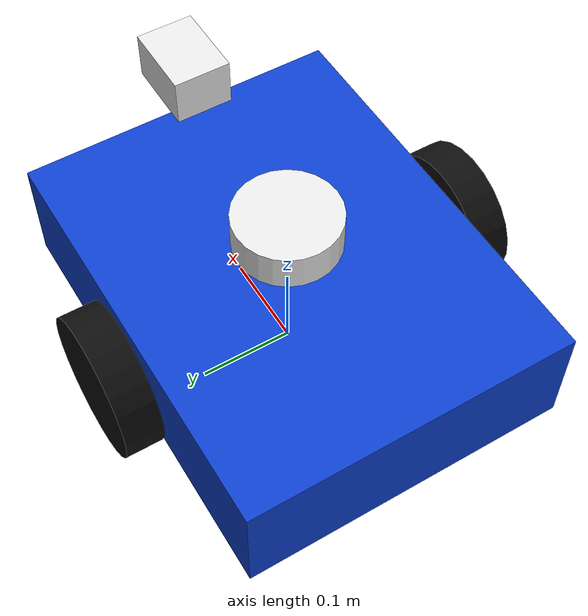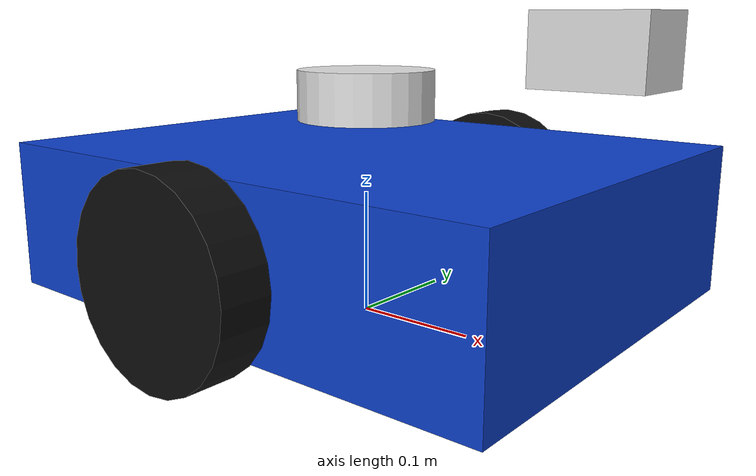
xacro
<?xml version="1.0"?>
<robot xmlns:xacro="http://www.ros.org/wiki/xacro" name="ai_robot">

  <xacro:property name="base_length" value="0.45"/>
  <xacro:property name="base_width" value="0.35"/>
  <xacro:property name="base_height" value="0.12"/>
  <xacro:property name="wheel_radius" value="0.075"/>
  <xacro:property name="wheel_width" value="0.04"/>
  <xacro:property name="wheel_y" value="0.20"/>

  <material name="blue"><color rgba="0.05 0.25 0.8 1.0"/></material>
  <material name="black"><color rgba="0.05 0.05 0.05 1.0"/></material>
  <material name="white"><color rgba="0.9 0.9 0.9 1.0"/></material>

  <link name="base_footprint"/>
  <link name="base_link">
    <visual><origin xyz="0 0 0.08"/><geometry><box size="${base_length} ${base_width} ${base_height}"/></geometry><material name="blue"/></visual>
    <collision><origin xyz="0 0 0.08"/><geometry><box size="${base_length} ${base_width} ${base_height}"/></geometry></collision>
    <inertial><origin xyz="0 0 0.08"/><mass value="5.0"/><inertia ixx="0.08" ixy="0" ixz="0" iyy="0.12" iyz="0" izz="0.15"/></inertial>
  </link>
  <joint name="base_footprint_joint" type="fixed"><parent link="base_footprint"/><child link="base_link"/><origin xyz="0 0 0"/></joint>

  <xacro:macro name="wheel" params="name x y">
    <link name="${name}">
      <visual><origin rpy="1.5708 0 0"/><geometry><cylinder radius="${wheel_radius}" length="${wheel_width}"/></geometry><material name="black"/></visual>
      <collision><origin rpy="1.5708 0 0"/><geometry><cylinder radius="${wheel_radius}" length="${wheel_width}"/></geometry></collision>
      <inertial><mass value="0.4"/><inertia ixx="0.0015" ixy="0" ixz="0" iyy="0.0015" iyz="0" izz="0.0015"/></inertial>
    </link>
    <joint name="${name}_joint" type="continuous"><parent link="base_link"/><child link="${name}"/><origin xyz="${x} ${y} 0.075"/><axis xyz="0 1 0"/></joint>
  </xacro:macro>
  <xacro:wheel name="left_wheel" x="0" y="${wheel_y}"/>
  <xacro:wheel name="right_wheel" x="0" y="-${wheel_y}"/>

  <link name="caster_link">
    <visual><origin xyz="0 0 -0.03"/><geometry><sphere radius="0.045"/></geometry><material name="black"/></visual>
    <collision><origin xyz="0 0 -0.03"/><geometry><sphere radius="0.045"/></geometry></collision>
    <inertial><mass value="0.2"/><inertia ixx="0.0001" ixy="0" ixz="0" iyy="0.0001" iyz="0" izz="0.0001"/></inertial>
  </link>
  <joint name="caster_joint" type="fixed"><parent link="base_link"/><child link="caster_link"/><origin xyz="-0.16 0 0.045"/></joint>

  <link name="lidar_link">
    <visual><geometry><cylinder radius="0.055" length="0.04"/></geometry><material name="white"/></visual>
    <collision><geometry><cylinder radius="0.055" length="0.04"/></geometry></collision>
    <inertial><mass value="0.1"/><inertia ixx="0.0001" ixy="0" ixz="0" iyy="0.0001" iyz="0" izz="0.0001"/></inertial>
  </link>
  <joint name="lidar_joint" type="fixed"><parent link="base_link"/><child link="lidar_link"/><origin xyz="0 0 0.18"/></joint>

  <link name="camera_link">
    <visual><geometry><box size="0.08 0.06 0.05"/></geometry><material name="white"/></visual>
    <collision><geometry><box size="0.08 0.06 0.05"/></geometry></collision>
    <inertial><mass value="0.1"/><inertia ixx="0.0001" ixy="0" ixz="0" iyy="0.0001" iyz="0" izz="0.0001"/></inertial>
  </link>
  <joint name="camera_joint" type="fixed"><parent link="base_link"/><child link="camera_link"/><origin xyz="0.20 0 0.22"/></joint>

  <gazebo>
    <plugin filename="gz-sim-diff-drive-system" name="gz::sim::systems::DiffDrive">
      <left_joint>left_wheel_joint</left_joint><right_joint>right_wheel_joint</right_joint>
      <wheel_separation>0.40</wheel_separation><wheel_radius>${wheel_radius}</wheel_radius>
      <topic>/cmd_vel</topic><odom_topic>/odom</odom_topic><tf_topic>/tf</tf_topic>
      <frame_id>odom</frame_id><child_frame_id>base_footprint</child_frame_id><odom_publish_frequency>30</odom_publish_frequency>
    </plugin>
  </gazebo>

  <gazebo reference="lidar_link">
    <sensor name="lidar" type="gpu_lidar">
      <topic>/scan</topic><update_rate>10</update_rate><always_on>true</always_on><visualize>true</visualize><gz_frame_id>lidar_link</gz_frame_id>
      <ray><scan><horizontal><samples>360</samples><resolution>1</resolution><min_angle>-3.14159</min_angle><max_angle>3.14159</max_angle></horizontal></scan><range><min>0.12</min><max>10.0</max><resolution>0.01</resolution></range></ray>
    </sensor>
  </gazebo>

  <gazebo reference="camera_link">
    <sensor name="camera" type="camera">
      <topic>/camera/image_raw</topic><update_rate>15</update_rate><always_on>true</always_on><visualize>true</visualize><gz_frame_id>camera_link</gz_frame_id>
      <camera><horizontal_fov>1.047</horizontal_fov><image><width>640</width><height>480</height><format>R8G8B8</format></image><clip><near>0.05</near><far>20</far></clip></camera>
    </sensor>
  </gazebo>

</robot>
